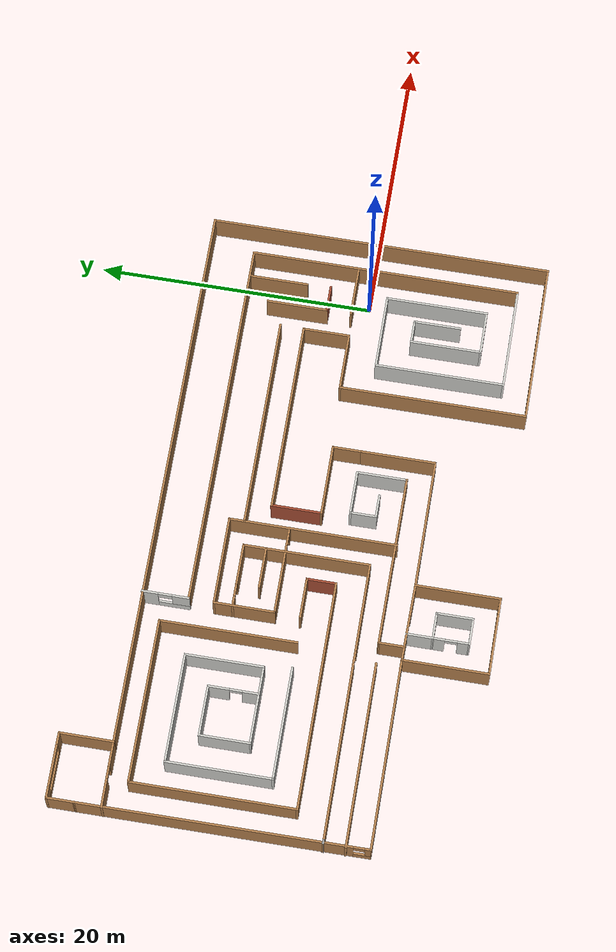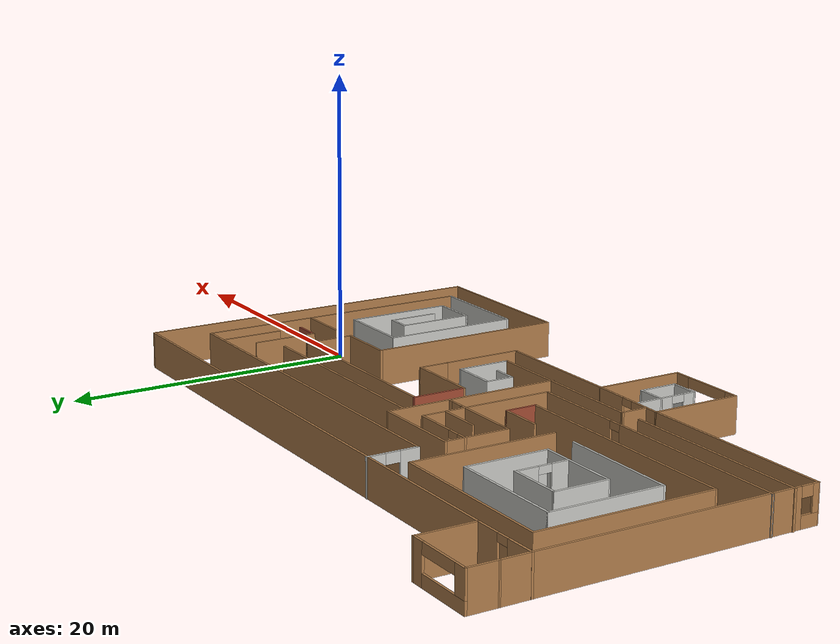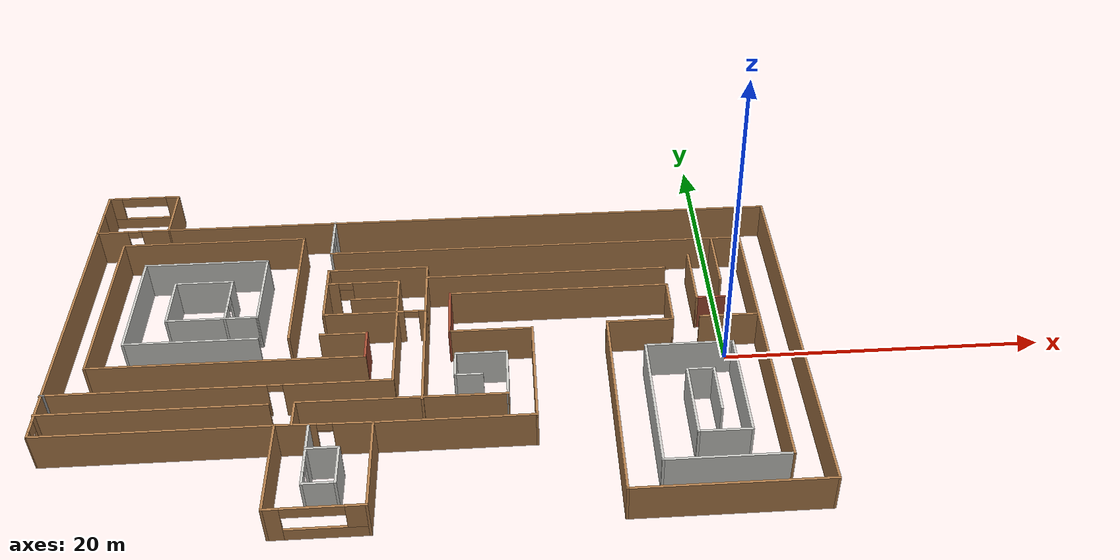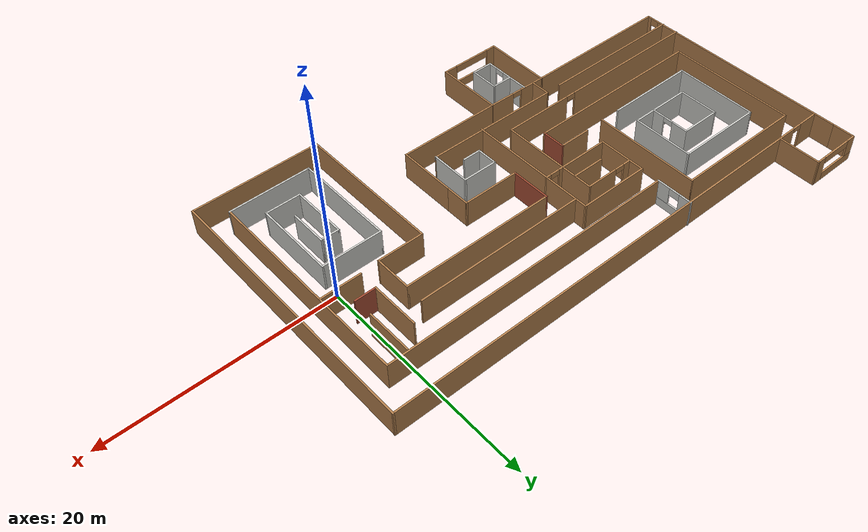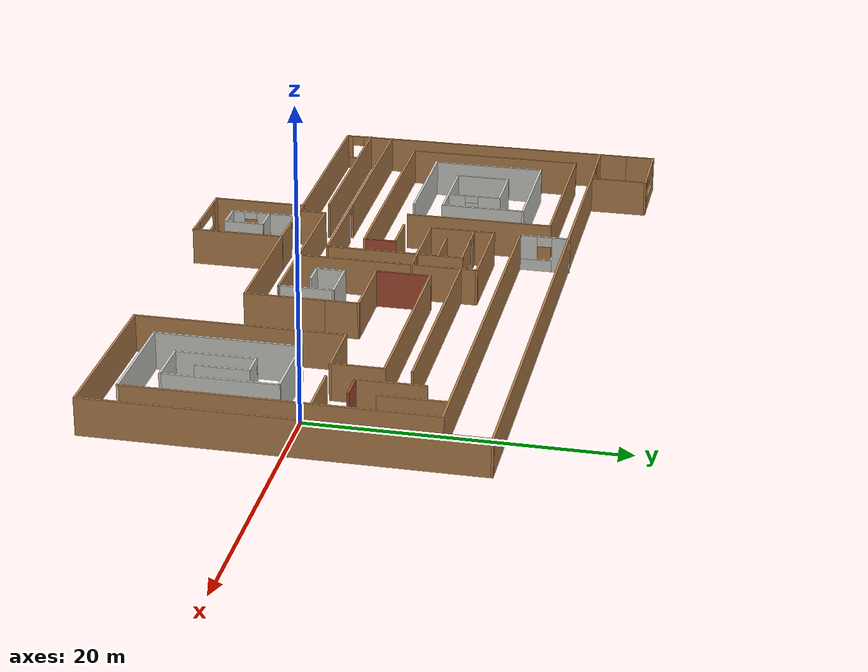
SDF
<sdf version="1.6">
 <model name="Building">
  <pose>-18.2583 1.7119 0 0 -0 0</pose>
  <link name="Wall_0">
   <pose>-22.4887 2.1266 0 0 0 -1.56733</pose>
   <visual name="Wall_0_Visual_0">
    <pose>-0.641349 0 1.25 0 -0 0</pose>
    <geometry><box><size>19.6144 0.15 2.5</size></box></geometry>
    <material>
     <script><uri>file://media/materials/scripts/gazebo.material</uri><name>Gazebo/Wood</name></script>
     <ambient>1 1 1 1</ambient>
    </material>
    <meta><layer>0</layer></meta>
   </visual>
   <collision name="Wall_0_Collision_0">
    <geometry><box><size>19.6144 0.15 2.5</size></box></geometry>
    <pose>-0.641349 0 1.25 0 -0 0</pose>
   </collision>
   <visual name="Wall_0_Visual_1">
    <pose>9.80721 0 0.4 0 -0 0</pose>
    <geometry><box><size>1.2827 0.15 0.8</size></box></geometry>
    <material>
     <script><uri>file://media/materials/scripts/gazebo.material</uri><name>Gazebo/Wood</name></script>
     <ambient>1 1 1 1</ambient>
    </material>
    <meta><layer>0</layer></meta>
   </visual>
   <collision name="Wall_0_Collision_1">
    <geometry><box><size>1.2827 0.15 0.8</size></box></geometry>
    <pose>9.80721 0 0.4 0 -0 0</pose>
   </collision>
   <visual name="Wall_0_Visual_2">
    <pose>10.2072 0 1.65 0 -0 0</pose>
    <geometry><box><size>0.482698 0.15 1.7</size></box></geometry>
    <material>
     <script><uri>file://media/materials/scripts/gazebo.material</uri><name>Gazebo/Wood</name></script>
     <ambient>1 1 1 1</ambient>
    </material>
    <meta><layer>0</layer></meta>
   </visual>
   <collision name="Wall_0_Collision_2">
    <geometry><box><size>0.482698 0.15 1.7</size></box></geometry>
    <pose>10.2072 0 1.65 0 -0 0</pose>
   </collision>
   <visual name="Wall_0_Visual_3">
    <pose>9.56587 0 2.15 0 -0 0</pose>
    <geometry><box><size>0.8 0.15 0.7</size></box></geometry>
    <material>
     <script><uri>file://media/materials/scripts/gazebo.material</uri><name>Gazebo/Wood</name></script>
     <ambient>1 1 1 1</ambient>
    </material>
    <meta><layer>0</layer></meta>
   </visual>
   <collision name="Wall_0_Collision_3">
    <geometry><box><size>0.8 0.15 0.7</size></box></geometry>
    <pose>9.56587 0 2.15 0 -0 0</pose>
   </collision>
  </link>
  <link name="Wall_1">
   <collision name="Wall_1_Collision">
    <geometry><box><size>13.928 0.15 2.5</size></box></geometry>
    <pose>0 0 1.25 0 -0 0</pose>
   </collision>
   <visual name="Wall_1_Visual">
    <pose>0 0 1.25 0 -0 0</pose>
    <geometry><box><size>13.928 0.15 2.5</size></box></geometry>
    <material>
     <script><uri>file://media/materials/scripts/gazebo.material</uri><name>Gazebo/Wood</name></script>
     <ambient>1 1 1 1</ambient>
    </material>
    <meta><layer>0</layer></meta>
   </visual>
   <pose>-15.5637 -8.2469 0 0 -0 0</pose>
  </link>
  <link name="Wall_10">
   <collision name="Wall_10_Collision">
    <geometry><box><size>14 0.15 2.5</size></box></geometry>
    <pose>0 0 1.25 0 -0 0</pose>
   </collision>
   <visual name="Wall_10_Visual">
    <pose>0 0 1.25 0 -0 0</pose>
    <geometry><box><size>14 0.15 2.5</size></box></geometry>
    <material>
     <script><uri>file://media/materials/scripts/gazebo.material</uri><name>Gazebo/Wood</name></script>
     <ambient>1 1 1 1</ambient>
    </material>
    <meta><layer>0</layer></meta>
   </visual>
   <pose>8.10018 2.69968 0 0 -0 0</pose>
  </link>
  <link name="Wall_11">
   <collision name="Wall_11_Collision">
    <geometry><box><size>3.5 0.15 2.5</size></box></geometry>
    <pose>0 0 1.25 0 -0 0</pose>
   </collision>
   <visual name="Wall_11_Visual">
    <pose>0 0 1.25 0 -0 0</pose>
    <geometry><box><size>3.5 0.15 2.5</size></box></geometry>
    <material>
     <script><uri>file://media/materials/scripts/gazebo.material</uri><name>Gazebo/Wood</name></script>
     <ambient>1 1 1 1</ambient>
    </material>
    <meta><layer>0</layer></meta>
   </visual>
   <pose>15.0252 1.02468 0 0 0 -1.5708</pose>
  </link>
  <link name="Wall_12">
   <collision name="Wall_12_Collision">
    <geometry><box><size>4.25 0.15 2.5</size></box></geometry>
    <pose>0 0 1.25 0 -0 0</pose>
   </collision>
   <visual name="Wall_12_Visual">
    <pose>0 0 1.25 0 -0 0</pose>
    <geometry><box><size>4.25 0.15 2.5</size></box></geometry>
    <material>
     <script><uri>file://media/materials/scripts/gazebo.material</uri><name>Gazebo/Wood</name></script>
     <ambient>1 1 1 1</ambient>
    </material>
    <meta><layer>0</layer></meta>
   </visual>
   <pose>12.9752 -0.650318 0 0 -0 3.14159</pose>
  </link>
  <link name="Wall_13">
   <collision name="Wall_13_Collision">
    <geometry><box><size>13.75 0.15 2.5</size></box></geometry>
    <pose>0 0 1.25 0 -0 0</pose>
   </collision>
   <visual name="Wall_13_Visual">
    <pose>0 0 1.25 0 -0 0</pose>
    <geometry><box><size>13.75 0.15 2.5</size></box></geometry>
    <material>
     <script><uri>file://media/materials/scripts/gazebo.material</uri><name>Gazebo/Wood</name></script>
     <ambient>1 1 1 1</ambient>
    </material>
    <meta><layer>0</layer></meta>
   </visual>
   <pose>10.9252 -7.45032 0 0 0 -1.5708</pose>
  </link>
  <link name="Wall_14">
   <collision name="Wall_14_Collision">
    <geometry><box><size>11.75 0.15 2.5</size></box></geometry>
    <pose>0 0 1.25 0 -0 0</pose>
   </collision>
   <visual name="Wall_14_Visual">
    <pose>0 0 1.25 0 -0 0</pose>
    <geometry><box><size>11.75 0.15 2.5</size></box></geometry>
    <material>
     <script><uri>file://media/materials/scripts/gazebo.material</uri><name>Gazebo/Wood</name></script>
     <ambient>1 1 1 1</ambient>
    </material>
    <meta><layer>0</layer></meta>
   </visual>
   <pose>16.7252 -14.2503 0 0 -0 0</pose>
  </link>
  <link name="Wall_15">
   <collision name="Wall_15_Collision">
    <geometry><box><size>25 0.15 2.5</size></box></geometry>
    <pose>0 0 1.25 0 -0 0</pose>
   </collision>
   <visual name="Wall_15_Visual">
    <pose>0 0 1.25 0 -0 0</pose>
    <geometry><box><size>25 0.15 2.5</size></box></geometry>
    <material>
     <script><uri>file://media/materials/scripts/gazebo.material</uri><name>Gazebo/Wood</name></script>
     <ambient>1 1 1 1</ambient>
    </material>
    <meta><layer>0</layer></meta>
   </visual>
   <pose>22.5252 -1.82532 0 0 -0 1.5708</pose>
  </link>
  <link name="Wall_16">
   <collision name="Wall_16_Collision">
    <geometry><box><size>40.5 0.15 2.5</size></box></geometry>
    <pose>0 0 1.25 0 -0 0</pose>
   </collision>
   <visual name="Wall_16_Visual">
    <pose>0 0 1.25 0 -0 0</pose>
    <geometry><box><size>40.5 0.15 2.5</size></box></geometry>
    <material>
     <script><uri>file://media/materials/scripts/gazebo.material</uri><name>Gazebo/Wood</name></script>
     <ambient>1 1 1 1</ambient>
    </material>
    <meta><layer>0</layer></meta>
   </visual>
   <pose>2.35024 10.5999 0 0 -0 3.14158</pose>
  </link>
  <link name="Wall_17">
   <collision name="Wall_17_Collision">
    <geometry><box><size>4 0.15 2.5</size></box></geometry>
    <pose>0 0 1.25 0 -0 0</pose>
   </collision>
   <visual name="Wall_17_Visual">
    <pose>0 0 1.25 0 -0 0</pose>
    <geometry><box><size>4 0.15 2.5</size></box></geometry>
    <material>
     <script><uri>file://media/materials/scripts/gazebo.material</uri><name>Gazebo/Wood</name></script>
     <ambient>1 1 1 1</ambient>
    </material>
    <meta><layer>0</layer></meta>
   </visual>
   <pose>-17.8248 12.5249 0 0 -0 1.57083</pose>
  </link>
  <link name="Wall_18">
   <pose>-20.1748 14.4499 0 0 -0 3.1415</pose>
   <visual name="Wall_18_Visual_0">
    <pose>-1.954 0 1.25 0 -0 0</pose>
    <geometry><box><size>0.941881 0.15 2.5</size></box></geometry>
    <material>
     <script><uri>file://media/materials/scripts/gazebo.material</uri><name>Gazebo/Wood</name></script>
     <ambient>1 1 1 1</ambient>
    </material>
    <meta><layer>0</layer></meta>
   </visual>
   <collision name="Wall_18_Collision_0">
    <geometry><box><size>0.941881 0.15 2.5</size></box></geometry>
    <pose>-1.954 0 1.25 0 -0 0</pose>
   </collision>
   <visual name="Wall_18_Visual_1">
    <pose>0.470941 0 0.4 0 -0 0</pose>
    <geometry><box><size>3.908 0.15 0.8</size></box></geometry>
    <material>
     <script><uri>file://media/materials/scripts/gazebo.material</uri><name>Gazebo/Wood</name></script>
     <ambient>1 1 1 1</ambient>
    </material>
    <meta><layer>0</layer></meta>
   </visual>
   <collision name="Wall_18_Collision_1">
    <geometry><box><size>3.908 0.15 0.8</size></box></geometry>
    <pose>0.470941 0 0.4 0 -0 0</pose>
   </collision>
   <visual name="Wall_18_Visual_2">
    <pose>1.97094 0 1.65 0 -0 0</pose>
    <geometry><box><size>0.907999 0.15 1.7</size></box></geometry>
    <material>
     <script><uri>file://media/materials/scripts/gazebo.material</uri><name>Gazebo/Wood</name></script>
     <ambient>1 1 1 1</ambient>
    </material>
    <meta><layer>0</layer></meta>
   </visual>
   <collision name="Wall_18_Collision_2">
    <geometry><box><size>0.907999 0.15 1.7</size></box></geometry>
    <pose>1.97094 0 1.65 0 -0 0</pose>
   </collision>
   <visual name="Wall_18_Visual_3">
    <pose>0.016941 0 2.15 0 -0 0</pose>
    <geometry><box><size>3 0.15 0.7</size></box></geometry>
    <material>
     <script><uri>file://media/materials/scripts/gazebo.material</uri><name>Gazebo/Wood</name></script>
     <ambient>1 1 1 1</ambient>
    </material>
    <meta><layer>0</layer></meta>
   </visual>
   <collision name="Wall_18_Collision_3">
    <geometry><box><size>3 0.15 0.7</size></box></geometry>
    <pose>0.016941 0 2.15 0 -0 0</pose>
   </collision>
  </link>
  <link name="Wall_19">
   <collision name="Wall_19_Collision">
    <geometry><box><size>2.1 0.15 2.5</size></box></geometry>
    <pose>0 0 1.25 0 -0 0</pose>
   </collision>
   <visual name="Wall_19_Visual">
    <pose>0 0 1.25 0 -0 0</pose>
    <geometry><box><size>2.1 0.15 2.5</size></box></geometry>
    <material>
     <script><uri>file://media/materials/scripts/gazebo.material</uri><name>Gazebo/Wood</name></script>
     <ambient>0.921569 0.807843 0.615686 1</ambient>
    </material>
    <meta><layer>0</layer></meta>
   </visual>
   <pose>-22.5247 13.4751 0 0 0 -1.5708</pose>
  </link>
  <link name="Wall_2">
   <collision name="Wall_2_Collision">
    <geometry><box><size>6.35342 0.15 2.5</size></box></geometry>
    <pose>0 0 1.25 0 -0 0</pose>
   </collision>
   <visual name="Wall_2_Visual">
    <pose>0 0 1.25 0 -0 0</pose>
    <geometry><box><size>6.35342 0.15 2.5</size></box></geometry>
    <material>
     <script><uri>file://media/materials/scripts/gazebo.material</uri><name>Gazebo/Wood</name></script>
     <ambient>1 1 1 1</ambient>
    </material>
    <meta><layer>0</layer></meta>
   </visual>
   <pose>-8.6747 -11.3484 0 0 0 -1.5708</pose>
  </link>
  <link name="Wall_22">
   <pose>-5.87476 -8.29861 0 0 -0 3.12313</pose>
   <visual name="Wall_22_Visual_0">
    <pose>-1.68319 0 1.25 0 -0 0</pose>
    <geometry><box><size>2.38444 0.15 2.5</size></box></geometry>
    <material>
     <script><uri>file://media/materials/scripts/gazebo.material</uri><name>Gazebo/Wood</name></script>
     <ambient>1 1 1 1</ambient>
    </material>
    <meta><layer>0</layer></meta>
   </visual>
   <collision name="Wall_22_Collision_0">
    <geometry><box><size>2.38444 0.15 2.5</size></box></geometry>
    <pose>-1.68319 0 1.25 0 -0 0</pose>
   </collision>
   <visual name="Wall_22_Visual_1">
    <pose>1.64222 0 1.25 0 -0 0</pose>
    <geometry><box><size>2.46639 0.15 2.5</size></box></geometry>
    <material>
     <script><uri>file://media/materials/scripts/gazebo.material</uri><name>Gazebo/Wood</name></script>
     <ambient>1 1 1 1</ambient>
    </material>
    <meta><layer>0</layer></meta>
   </visual>
   <collision name="Wall_22_Collision_1">
    <geometry><box><size>2.46639 0.15 2.5</size></box></geometry>
    <pose>1.64222 0 1.25 0 -0 0</pose>
   </collision>
   <visual name="Wall_22_Visual_2">
    <pose>-0.040973 0 2.25 0 -0 0</pose>
    <geometry><box><size>0.9 0.15 0.5</size></box></geometry>
    <material>
     <script><uri>file://media/materials/scripts/gazebo.material</uri><name>Gazebo/Wood</name></script>
     <ambient>1 1 1 1</ambient>
    </material>
    <meta><layer>0</layer></meta>
   </visual>
   <collision name="Wall_22_Collision_2">
    <geometry><box><size>0.9 0.15 0.5</size></box></geometry>
    <pose>-0.040973 0 2.25 0 -0 0</pose>
   </collision>
  </link>
  <link name="Wall_24">
   <collision name="Wall_24_Collision">
    <geometry><box><size>2 0.15 2.5</size></box></geometry>
    <pose>0 0 1.25 0 -0 0</pose>
   </collision>
   <visual name="Wall_24_Visual">
    <pose>0 0 1.25 0 -0 0</pose>
    <geometry><box><size>2 0.15 2.5</size></box></geometry>
    <material>
     <script><uri>file://media/materials/scripts/gazebo.material</uri><name>Gazebo/CeilingTiled</name></script>
     <ambient>1 1 1 1</ambient>
    </material>
    <meta><layer>0</layer></meta>
   </visual>
   <pose>-6.7275 -9.22377 0 0 0 -1.57101</pose>
  </link>
  <link name="Wall_25">
   <collision name="Wall_25_Collision">
    <geometry><box><size>2 0.15 2.5</size></box></geometry>
    <pose>0 0 1.25 0 -0 0</pose>
   </collision>
   <visual name="Wall_25_Visual">
    <pose>0 0 1.25 0 -0 0</pose>
    <geometry><box><size>2 0.15 2.5</size></box></geometry>
    <material>
     <script><uri>file://media/materials/scripts/gazebo.material</uri><name>Gazebo/CeilingTiled</name></script>
     <ambient>1 1 1 1</ambient>
    </material>
    <meta><layer>0</layer></meta>
   </visual>
   <pose>-5.8027 -10.1489 0 0 -0 0</pose>
  </link>
  <link name="Wall_27">
   <collision name="Wall_27_Collision">
    <geometry><box><size>2.75 0.15 2.5</size></box></geometry>
    <pose>0 0 1.25 0 -0 0</pose>
   </collision>
   <visual name="Wall_27_Visual">
    <pose>0 0 1.25 0 -0 0</pose>
    <geometry><box><size>2.75 0.15 2.5</size></box></geometry>
    <material>
     <script><uri>file://media/materials/scripts/gazebo.material</uri><name>Gazebo/CeilingTiled</name></script>
     <ambient>1 1 1 1</ambient>
    </material>
    <meta><layer>0</layer></meta>
   </visual>
   <pose>-4.8775 -11.4488 0 0 0 -1.57064</pose>
  </link>
  <link name="Wall_28">
   <collision name="Wall_28_Collision">
    <geometry><box><size>2.0004 0.15 2.5</size></box></geometry>
    <pose>0 0 1.25 0 -0 0</pose>
   </collision>
   <visual name="Wall_28_Visual">
    <pose>0 0 1.25 0 -0 0</pose>
    <geometry><box><size>2.0004 0.15 2.5</size></box></geometry>
    <material>
     <script><uri>file://media/materials/scripts/gazebo.material</uri><name>Gazebo/CeilingTiled</name></script>
     <ambient>1 1 1 1</ambient>
    </material>
    <meta><layer>0</layer></meta>
   </visual>
   <pose>-5.8025 -12.7488 0 0 0 -3.14146</pose>
  </link>
  <link name="Wall_29">
   <pose>-6.7277 -11.4489 0 0 -0 1.5708</pose>
   <visual name="Wall_29_Visual_0">
    <pose>-0.915206 0 1.25 0 -0 0</pose>
    <geometry><box><size>0.919835 0.15 2.5</size></box></geometry>
    <material>
     <script><uri>file://media/materials/scripts/gazebo.material</uri><name>Gazebo/CeilingTiled</name></script>
     <ambient>1 1 1 1</ambient>
    </material>
    <meta><layer>0</layer></meta>
   </visual>
   <collision name="Wall_29_Collision_0">
    <geometry><box><size>0.919835 0.15 2.5</size></box></geometry>
    <pose>-0.915206 0 1.25 0 -0 0</pose>
   </collision>
   <visual name="Wall_29_Visual_1">
    <pose>0.909917 0 1.25 0 -0 0</pose>
    <geometry><box><size>0.930411 0.15 2.5</size></box></geometry>
    <material>
     <script><uri>file://media/materials/scripts/gazebo.material</uri><name>Gazebo/CeilingTiled</name></script>
     <ambient>1 1 1 1</ambient>
    </material>
    <meta><layer>0</layer></meta>
   </visual>
   <collision name="Wall_29_Collision_1">
    <geometry><box><size>0.930411 0.15 2.5</size></box></geometry>
    <pose>0.909917 0 1.25 0 -0 0</pose>
   </collision>
   <visual name="Wall_29_Visual_2">
    <pose>-0.005288 0 2.25 0 -0 0</pose>
    <geometry><box><size>0.9 0.15 0.5</size></box></geometry>
    <material>
     <script><uri>file://media/materials/scripts/gazebo.material</uri><name>Gazebo/CeilingTiled</name></script>
     <ambient>1 1 1 1</ambient>
    </material>
    <meta><layer>0</layer></meta>
   </visual>
   <collision name="Wall_29_Collision_2">
    <geometry><box><size>0.9 0.15 0.5</size></box></geometry>
    <pose>-0.005288 0 2.25 0 -0 0</pose>
   </collision>
  </link>
  <link name="Wall_3">
   <pose>-5.8747 -14.4499 0 0 -0 0</pose>
   <visual name="Wall_3_Visual_0">
    <pose>-2.37464 0 1.25 0 -0 0</pose>
    <geometry><box><size>1.00072 0.15 2.5</size></box></geometry>
    <material>
     <script><uri>file://media/materials/scripts/gazebo.material</uri><name>Gazebo/Wood</name></script>
     <ambient>1 1 1 1</ambient>
    </material>
    <meta><layer>0</layer></meta>
   </visual>
   <collision name="Wall_3_Collision_0">
    <geometry><box><size>1.00072 0.15 2.5</size></box></geometry>
    <pose>-2.37464 0 1.25 0 -0 0</pose>
   </collision>
   <visual name="Wall_3_Visual_1">
    <pose>0.50036 0 0.4 0 -0 0</pose>
    <geometry><box><size>4.74928 0.15 0.8</size></box></geometry>
    <material>
     <script><uri>file://media/materials/scripts/gazebo.material</uri><name>Gazebo/Wood</name></script>
     <ambient>1 1 1 1</ambient>
    </material>
    <meta><layer>0</layer></meta>
   </visual>
   <collision name="Wall_3_Collision_1">
    <geometry><box><size>4.74928 0.15 0.8</size></box></geometry>
    <pose>0.50036 0 0.4 0 -0 0</pose>
   </collision>
   <visual name="Wall_3_Visual_2">
    <pose>2.25036 0 1.65 0 -0 0</pose>
    <geometry><box><size>1.24928 0.15 1.7</size></box></geometry>
    <material>
     <script><uri>file://media/materials/scripts/gazebo.material</uri><name>Gazebo/Wood</name></script>
     <ambient>1 1 1 1</ambient>
    </material>
    <meta><layer>0</layer></meta>
   </visual>
   <collision name="Wall_3_Collision_2">
    <geometry><box><size>1.24928 0.15 1.7</size></box></geometry>
    <pose>2.25036 0 1.65 0 -0 0</pose>
   </collision>
   <visual name="Wall_3_Visual_3">
    <pose>-0.124281 0 2.15 0 -0 0</pose>
    <geometry><box><size>3.5 0.15 0.7</size></box></geometry>
    <material>
     <script><uri>file://media/materials/scripts/gazebo.material</uri><name>Gazebo/Wood</name></script>
     <ambient>1 1 1 1</ambient>
    </material>
    <meta><layer>0</layer></meta>
   </visual>
   <collision name="Wall_3_Collision_3">
    <geometry><box><size>3.5 0.15 0.7</size></box></geometry>
    <pose>-0.124281 0 2.15 0 -0 0</pose>
   </collision>
  </link>
  <link name="Wall_31">
   <collision name="Wall_31_Collision">
    <geometry><box><size>1.94917 0.15 2.5</size></box></geometry>
    <pose>0 0 1.25 0 -0 0</pose>
   </collision>
   <visual name="Wall_31_Visual">
    <pose>0 0 1.25 0 -0 0</pose>
    <geometry><box><size>1.94917 0.15 2.5</size></box></geometry>
    <material>
     <script><uri>file://media/materials/scripts/gazebo.material</uri><name>Gazebo/Wood</name></script>
     <ambient>1 1 1 1</ambient>
    </material>
    <meta><layer>0</layer></meta>
   </visual>
   <pose>-7.6987 -7.3474 0 0 -0 1.5708</pose>
  </link>
  <link name="Wall_32">
   <collision name="Wall_32_Collision">
    <geometry><box><size>12.5011 0.15 2.5</size></box></geometry>
    <pose>0 0 1.25 0 -0 0</pose>
   </collision>
   <visual name="Wall_32_Visual">
    <pose>0 0 1.25 0 -0 0</pose>
    <geometry><box><size>12.5011 0.15 2.5</size></box></geometry>
    <material>
     <script><uri>file://media/materials/scripts/gazebo.material</uri><name>Gazebo/Wood</name></script>
     <ambient>1 1 1 1</ambient>
    </material>
    <meta><layer>0</layer></meta>
   </visual>
   <pose>-1.52347 -6.48873 0 0 0 -0.006612</pose>
  </link>
  <link name="Wall_33">
   <collision name="Wall_33_Collision">
    <geometry><box><size>3.75 0.15 2.5</size></box></geometry>
    <pose>0 0 1.25 0 -0 0</pose>
   </collision>
   <visual name="Wall_33_Visual">
    <pose>0 0 1.25 0 -0 0</pose>
    <geometry><box><size>3.75 0.15 2.5</size></box></geometry>
    <material>
     <script><uri>file://media/materials/scripts/gazebo.material</uri><name>Gazebo/CeilingTiled</name></script>
     <ambient>1 1 1 1</ambient>
    </material>
    <meta><layer>0</layer></meta>
   </visual>
   <pose>4.65177 -4.72956 0 0 -0 1.5708</pose>
  </link>
  <link name="Wall_34">
   <collision name="Wall_34_Collision">
    <geometry><box><size>3.25 0.15 2.5</size></box></geometry>
    <pose>0 0 1.25 0 -0 0</pose>
   </collision>
   <visual name="Wall_34_Visual">
    <pose>0 0 1.25 0 -0 0</pose>
    <geometry><box><size>3.25 0.15 2.5</size></box></geometry>
    <material>
     <script><uri>file://media/materials/scripts/gazebo.material</uri><name>Gazebo/CeilingTiled</name></script>
     <ambient>1 1 1 1</ambient>
    </material>
    <meta><layer>0</layer></meta>
   </visual>
   <pose>3.10177 -2.92956 0 0 -0 3.14159</pose>
  </link>
  <link name="Wall_35">
   <collision name="Wall_35_Collision">
    <geometry><box><size>2 0.15 2.5</size></box></geometry>
    <pose>0 0 1.25 0 -0 0</pose>
   </collision>
   <visual name="Wall_35_Visual">
    <pose>0 0 1.25 0 -0 0</pose>
    <geometry><box><size>2 0.15 2.5</size></box></geometry>
    <material>
     <script><uri>file://media/materials/scripts/gazebo.material</uri><name>Gazebo/CeilingTiled</name></script>
     <ambient>1 1 1 1</ambient>
    </material>
    <meta><layer>0</layer></meta>
   </visual>
   <pose>1.55177 -3.85456 0 0 0 -1.5708</pose>
  </link>
  <link name="Wall_36">
   <collision name="Wall_36_Collision">
    <geometry><box><size>1.75 0.15 2.5</size></box></geometry>
    <pose>0 0 1.25 0 -0 0</pose>
   </collision>
   <visual name="Wall_36_Visual">
    <pose>0 0 1.25 0 -0 0</pose>
    <geometry><box><size>1.75 0.15 2.5</size></box></geometry>
    <material>
     <script><uri>file://media/materials/scripts/gazebo.material</uri><name>Gazebo/CeilingTiled</name></script>
     <ambient>1 1 1 1</ambient>
    </material>
    <meta><layer>0</layer></meta>
   </visual>
   <pose>2.35177 -4.77956 0 0 -0 0</pose>
  </link>
  <link name="Wall_38">
   <collision name="Wall_38_Collision">
    <geometry><box><size>12.25 0.15 2.5</size></box></geometry>
    <pose>0 0 1.25 0 -0 0</pose>
   </collision>
   <visual name="Wall_38_Visual">
    <pose>0 0 1.25 0 -0 0</pose>
    <geometry><box><size>12.25 0.15 2.5</size></box></geometry>
    <material>
     <script><uri>file://media/materials/scripts/gazebo.material</uri><name>Gazebo/Wood</name></script>
     <ambient>1 1 1 1</ambient>
    </material>
    <meta><layer>0</layer></meta>
   </visual>
   <pose>-0.3357 -0.549898 0 0 -0 1.5708</pose>
  </link>
  <link name="Wall_39">
   <collision name="Wall_39_Collision">
    <geometry><box><size>6.5 0.15 2.5</size></box></geometry>
    <pose>0 0 1.25 0 -0 0</pose>
   </collision>
   <visual name="Wall_39_Visual">
    <pose>0 0 1.25 0 -0 0</pose>
    <geometry><box><size>6.5 0.15 2.5</size></box></geometry>
    <material>
     <script><uri>file://media/materials/scripts/gazebo.material</uri><name>Gazebo/Wood</name></script>
     <ambient>1 1 1 1</ambient>
    </material>
    <meta><layer>0</layer></meta>
   </visual>
   <pose>-3.51051 5.50029 0 0 -0 3.14153</pose>
  </link>
  <link name="Wall_4">
   <collision name="Wall_4_Collision">
    <geometry><box><size>6.25 0.15 2.5</size></box></geometry>
    <pose>0 0 1.25 0 -0 0</pose>
   </collision>
   <visual name="Wall_4_Visual">
    <pose>0 0 1.25 0 -0 0</pose>
    <geometry><box><size>6.25 0.15 2.5</size></box></geometry>
    <material>
     <script><uri>file://media/materials/scripts/gazebo.material</uri><name>Gazebo/Wood</name></script>
     <ambient>1 1 1 1</ambient>
    </material>
    <meta><layer>0</layer></meta>
   </visual>
   <pose>-3.07476 -11.4001 0 0 -0 1.57082</pose>
  </link>
  <link name="Wall_40">
   <collision name="Wall_40_Collision">
    <geometry><box><size>4.5 0.15 2.5</size></box></geometry>
    <pose>0 0 1.25 0 -0 0</pose>
   </collision>
   <visual name="Wall_40_Visual">
    <pose>0 0 1.25 0 -0 0</pose>
    <geometry><box><size>4.5 0.15 2.5</size></box></geometry>
    <material>
     <script><uri>file://media/materials/scripts/gazebo.material</uri><name>Gazebo/Wood</name></script>
     <ambient>1 1 1 1</ambient>
    </material>
    <meta><layer>0</layer></meta>
   </visual>
   <pose>-6.68532 3.32548 0 0 0 -1.5708</pose>
  </link>
  <link name="Wall_41">
   <pose>-3.51032 1.15048 0 0 -0 0</pose>
   <visual name="Wall_41_Visual_0">
    <pose>-0.707511 0 1.25 0 -0 0</pose>
    <geometry><box><size>5.08498 0.15 2.5</size></box></geometry>
    <material>
     <script><uri>file://media/materials/scripts/gazebo.material</uri><name>Gazebo/Wood</name></script>
     <ambient>1 1 1 1</ambient>
    </material>
    <meta><layer>0</layer></meta>
   </visual>
   <collision name="Wall_41_Collision_0">
    <geometry><box><size>5.08498 0.15 2.5</size></box></geometry>
    <pose>-0.707511 0 1.25 0 -0 0</pose>
   </collision>
   <visual name="Wall_41_Visual_1">
    <pose>2.99249 0 1.25 0 -0 0</pose>
    <geometry><box><size>0.515021 0.15 2.5</size></box></geometry>
    <material>
     <script><uri>file://media/materials/scripts/gazebo.material</uri><name>Gazebo/Wood</name></script>
     <ambient>1 1 1 1</ambient>
    </material>
    <meta><layer>0</layer></meta>
   </visual>
   <collision name="Wall_41_Collision_1">
    <geometry><box><size>0.515021 0.15 2.5</size></box></geometry>
    <pose>2.99249 0 1.25 0 -0 0</pose>
   </collision>
   <visual name="Wall_41_Visual_2">
    <pose>2.28498 0 2.25 0 -0 0</pose>
    <geometry><box><size>0.9 0.15 0.5</size></box></geometry>
    <material>
     <script><uri>file://media/materials/scripts/gazebo.material</uri><name>Gazebo/Wood</name></script>
     <ambient>1 1 1 1</ambient>
    </material>
    <meta><layer>0</layer></meta>
   </visual>
   <collision name="Wall_41_Collision_2">
    <geometry><box><size>0.9 0.15 0.5</size></box></geometry>
    <pose>2.28498 0 2.25 0 -0 0</pose>
   </collision>
  </link>
  <link name="Wall_43">
   <collision name="Wall_43_Collision">
    <geometry><box><size>9.25 0.15 2.5</size></box></geometry>
    <pose>0 0 1.25 0 -0 0</pose>
   </collision>
   <visual name="Wall_43_Visual">
    <pose>0 0 1.25 0 -0 0</pose>
    <geometry><box><size>9.25 0.15 2.5</size></box></geometry>
    <material>
     <script><uri>file://media/materials/scripts/gazebo.material</uri><name>Gazebo/Wood</name></script>
     <ambient>1 1 1 1</ambient>
    </material>
    <meta><layer>0</layer></meta>
   </visual>
   <pose>-2.1157 -0.387898 0 0 0 -1.5708</pose>
  </link>
  <link name="Wall_44">
   <pose>-12.3202 -4.9379 0 0 -0 3.14159</pose>
   <visual name="Wall_44_Visual_0">
    <pose>-7.02658 0 1.25 0 -0 0</pose>
    <geometry><box><size>6.50584 0.15 2.5</size></box></geometry>
    <material>
     <script><uri>file://media/materials/scripts/gazebo.material</uri><name>Gazebo/Wood</name></script>
     <ambient>1 1 1 1</ambient>
    </material>
    <meta><layer>0</layer></meta>
   </visual>
   <collision name="Wall_44_Collision_0">
    <geometry><box><size>6.50584 0.15 2.5</size></box></geometry>
    <pose>-7.02658 0 1.25 0 -0 0</pose>
   </collision>
   <visual name="Wall_44_Visual_1">
    <pose>3.70292 0 1.25 0 -0 0</pose>
    <geometry><box><size>13.1532 0.15 2.5</size></box></geometry>
    <material>
     <script><uri>file://media/materials/scripts/gazebo.material</uri><name>Gazebo/Wood</name></script>
     <ambient>1 1 1 1</ambient>
    </material>
    <meta><layer>0</layer></meta>
   </visual>
   <collision name="Wall_44_Collision_1">
    <geometry><box><size>13.1532 0.15 2.5</size></box></geometry>
    <pose>3.70292 0 1.25 0 -0 0</pose>
   </collision>
   <visual name="Wall_44_Visual_2">
    <pose>-3.32366 0 2.25 0 -0 0</pose>
    <geometry><box><size>0.9 0.15 0.5</size></box></geometry>
    <material>
     <script><uri>file://media/materials/scripts/gazebo.material</uri><name>Gazebo/Wood</name></script>
     <ambient>1 1 1 1</ambient>
    </material>
    <meta><layer>0</layer></meta>
   </visual>
   <collision name="Wall_44_Collision_2">
    <geometry><box><size>0.9 0.15 0.5</size></box></geometry>
    <pose>-3.32366 0 2.25 0 -0 0</pose>
   </collision>
  </link>
  <link name="Wall_45">
   <collision name="Wall_45_Collision">
    <geometry><box><size>0.359336 0.15 2.5</size></box></geometry>
    <pose>0 0 1.25 0 -0 0</pose>
   </collision>
   <visual name="Wall_45_Visual">
    <pose>0 0 1.25 0 -0 0</pose>
    <geometry><box><size>0.359336 0.15 2.5</size></box></geometry>
    <material>
     <script><uri>file://media/materials/scripts/gazebo.material</uri><name>Gazebo/Grey</name></script>
     <ambient>1 1 1 1</ambient>
    </material>
    <meta><layer>0</layer></meta>
   </visual>
   <pose>-22.42 -4.93812 0 0 0 -0.002083</pose>
  </link>
  <link name="Wall_47">
   <collision name="Wall_47_Collision">
    <geometry><box><size>3 0.15 2.5</size></box></geometry>
    <pose>0 0 1.25 0 -0 0</pose>
   </collision>
   <visual name="Wall_47_Visual">
    <pose>0 0 1.25 0 -0 0</pose>
    <geometry><box><size>3 0.15 2.5</size></box></geometry>
    <material>
     <script><uri>file://media/materials/scripts/gazebo.material</uri><name>Gazebo/Wood</name></script>
     <ambient>1 1 1 1</ambient>
    </material>
    <meta><layer>0</layer></meta>
   </visual>
   <pose>-3.60317 2.54344 0 0 -0 0</pose>
  </link>
  <link name="Wall_5">
   <collision name="Wall_5_Collision">
    <geometry><box><size>9.5 0.15 2.5</size></box></geometry>
    <pose>0 0 1.25 0 -0 0</pose>
   </collision>
   <visual name="Wall_5_Visual">
    <pose>0 0 1.25 0 -0 0</pose>
    <geometry><box><size>9.5 0.15 2.5</size></box></geometry>
    <material>
     <script><uri>file://media/materials/scripts/gazebo.material</uri><name>Gazebo/Wood</name></script>
     <ambient>1 1 1 1</ambient>
    </material>
    <meta><layer>0</layer></meta>
   </visual>
   <pose>1.60018 -8.35032 0 0 -0 0</pose>
  </link>
  <link name="Wall_50">
   <pose>-4.4007 4.1621 0 0 -0 3.14159</pose>
   <visual name="Wall_50_Visual_0">
    <pose>-0.848534 0 1.25 0 -0 0</pose>
    <geometry><box><size>3.02293 0.15 2.5</size></box></geometry>
    <material>
     <script><uri>file://media/materials/scripts/gazebo.material</uri><name>Gazebo/Wood</name></script>
     <ambient>1 1 1 1</ambient>
    </material>
    <meta><layer>0</layer></meta>
   </visual>
   <collision name="Wall_50_Collision_0">
    <geometry><box><size>3.02293 0.15 2.5</size></box></geometry>
    <pose>-0.848534 0 1.25 0 -0 0</pose>
   </collision>
   <visual name="Wall_50_Visual_1">
    <pose>1.96147 0 1.25 0 -0 0</pose>
    <geometry><box><size>0.797068 0.15 2.5</size></box></geometry>
    <material>
     <script><uri>file://media/materials/scripts/gazebo.material</uri><name>Gazebo/Wood</name></script>
     <ambient>1 1 1 1</ambient>
    </material>
    <meta><layer>0</layer></meta>
   </visual>
   <collision name="Wall_50_Collision_1">
    <geometry><box><size>0.797068 0.15 2.5</size></box></geometry>
    <pose>1.96147 0 1.25 0 -0 0</pose>
   </collision>
   <visual name="Wall_50_Visual_2">
    <pose>1.11293 0 2.25 0 -0 0</pose>
    <geometry><box><size>0.9 0.15 0.5</size></box></geometry>
    <material>
     <script><uri>file://media/materials/scripts/gazebo.material</uri><name>Gazebo/Wood</name></script>
     <ambient>1 1 1 1</ambient>
    </material>
    <meta><layer>0</layer></meta>
   </visual>
   <collision name="Wall_50_Collision_2">
    <geometry><box><size>0.9 0.15 0.5</size></box></geometry>
    <pose>1.11293 0 2.25 0 -0 0</pose>
   </collision>
  </link>
  <link name="Wall_52">
   <collision name="Wall_52_Collision">
    <geometry><box><size>13.439 0.15 2.5</size></box></geometry>
    <pose>0 0 1.25 0 -0 0</pose>
   </collision>
   <visual name="Wall_52_Visual">
    <pose>0 0 1.25 0 -0 0</pose>
    <geometry><box><size>13.439 0.15 2.5</size></box></geometry>
    <material>
     <script><uri>file://media/materials/scripts/gazebo.material</uri><name>Gazebo/Wood</name></script>
     <ambient>1 1 1 1</ambient>
    </material>
    <meta><layer>0</layer></meta>
   </visual>
   <pose>-15.8802 -6.5189 0 0 -0 3.14159</pose>
  </link>
  <link name="Wall_54">
   <collision name="Wall_54_Collision">
    <geometry><box><size>3 0.15 2.5</size></box></geometry>
    <pose>0 0 1.25 0 -0 0</pose>
   </collision>
   <visual name="Wall_54_Visual">
    <pose>0 0 1.25 0 -0 0</pose>
    <geometry><box><size>3 0.15 2.5</size></box></geometry>
    <material>
     <script><uri>file://media/materials/scripts/gazebo.material</uri><name>Gazebo/Wood</name></script>
     <ambient>1 1 1 1</ambient>
    </material>
    <meta><layer>0</layer></meta>
   </visual>
   <pose>-5.3023 -0.693004 0 0 -0 0</pose>
  </link>
  <link name="Wall_55">
   <collision name="Wall_55_Collision">
    <geometry><box><size>2.25 0.15 2.5</size></box></geometry>
    <pose>0 0 1.25 0 -0 0</pose>
   </collision>
   <visual name="Wall_55_Visual">
    <pose>0 0 1.25 0 -0 0</pose>
    <geometry><box><size>2.25 0.15 2.5</size></box></geometry>
    <material>
     <script><uri>file://media/materials/scripts/gazebo.material</uri><name>Gazebo/Bricks</name></script>
     <ambient>1 1 1 1</ambient>
    </material>
    <meta><layer>0</layer></meta>
   </visual>
   <pose>-3.8773 -1.743 0 0 0 -1.5708</pose>
  </link>
  <link name="Wall_56">
   <collision name="Wall_56_Collision">
    <geometry><box><size>16.75 0.15 2.5</size></box></geometry>
    <pose>0 0 1.25 0 -0 0</pose>
   </collision>
   <visual name="Wall_56_Visual">
    <pose>0 0 1.25 0 -0 0</pose>
    <geometry><box><size>16.75 0.15 2.5</size></box></geometry>
    <material>
     <script><uri>file://media/materials/scripts/gazebo.material</uri><name>Gazebo/Wood</name></script>
     <ambient>1 1 1 1</ambient>
    </material>
    <meta><layer>0</layer></meta>
   </visual>
   <pose>-12.1773 -2.793 0 0 -0 3.14159</pose>
  </link>
  <link name="Wall_57">
   <collision name="Wall_57_Collision">
    <geometry><box><size>12 0.15 2.5</size></box></geometry>
    <pose>0 0 1.25 0 -0 0</pose>
   </collision>
   <visual name="Wall_57_Visual">
    <pose>0 0 1.25 0 -0 0</pose>
    <geometry><box><size>12 0.15 2.5</size></box></geometry>
    <material>
     <script><uri>file://media/materials/scripts/gazebo.material</uri><name>Gazebo/Wood</name></script>
     <ambient>1 1 1 1</ambient>
    </material>
    <meta><layer>0</layer></meta>
   </visual>
   <pose>-20.4773 3.132 0 0 -0 1.5708</pose>
  </link>
  <link name="Wall_58">
   <collision name="Wall_58_Collision">
    <geometry><box><size>12 0.15 2.5</size></box></geometry>
    <pose>0 0 1.25 0 -0 0</pose>
   </collision>
   <visual name="Wall_58_Visual">
    <pose>0 0 1.25 0 -0 0</pose>
    <geometry><box><size>12 0.15 2.5</size></box></geometry>
    <material>
     <script><uri>file://media/materials/scripts/gazebo.material</uri><name>Gazebo/Wood</name></script>
     <ambient>1 1 1 1</ambient>
    </material>
    <meta><layer>0</layer></meta>
   </visual>
   <pose>-14.5523 9.057 0 0 -0 0</pose>
  </link>
  <link name="Wall_59">
   <collision name="Wall_59_Collision">
    <geometry><box><size>10 0.15 2.5</size></box></geometry>
    <pose>0 0 1.25 0 -0 0</pose>
   </collision>
   <visual name="Wall_59_Visual">
    <pose>0 0 1.25 0 -0 0</pose>
    <geometry><box><size>10 0.15 2.5</size></box></geometry>
    <material>
     <script><uri>file://media/materials/scripts/gazebo.material</uri><name>Gazebo/Wood</name></script>
     <ambient>1 1 1 1</ambient>
    </material>
    <meta><layer>0</layer></meta>
   </visual>
   <pose>-8.6273 4.132 0 0 0 -1.5708</pose>
  </link>
  <link name="Wall_6">
   <collision name="Wall_6_Collision">
    <geometry><box><size>5.5 0.15 2.5</size></box></geometry>
    <pose>0 0 1.25 0 -0 0</pose>
   </collision>
   <visual name="Wall_6_Visual">
    <pose>0 0 1.25 0 -0 0</pose>
    <geometry><box><size>5.5 0.15 2.5</size></box></geometry>
    <material>
     <script><uri>file://media/materials/scripts/gazebo.material</uri><name>Gazebo/Wood</name></script>
     <ambient>1 1 1 1</ambient>
    </material>
    <meta><layer>0</layer></meta>
   </visual>
   <pose>6.27518 -5.67532 0 0 -0 1.5708</pose>
  </link>
  <link name="Wall_61">
   <collision name="Wall_61_Collision">
    <geometry><box><size>8.25 0.15 2.5</size></box></geometry>
    <pose>0 0 1.25 0 -0 0</pose>
   </collision>
   <visual name="Wall_61_Visual">
    <pose>0 0 1.25 0 -0 0</pose>
    <geometry><box><size>8.25 0.15 2.5</size></box></geometry>
    <material>
     <script><uri>file://media/materials/scripts/gazebo.material</uri><name>Gazebo/CeilingTiled</name></script>
     <ambient>1 1 1 1</ambient>
    </material>
    <meta><layer>0</layer></meta>
   </visual>
   <pose>-14.5801 -0.773915 0 0 -0 3.14159</pose>
  </link>
  <link name="Wall_62">
   <collision name="Wall_62_Collision">
    <geometry><box><size>7.75 0.15 2.5</size></box></geometry>
    <pose>0 0 1.25 0 -0 0</pose>
   </collision>
   <visual name="Wall_62_Visual">
    <pose>0 0 1.25 0 -0 0</pose>
    <geometry><box><size>7.75 0.15 2.5</size></box></geometry>
    <material>
     <script><uri>file://media/materials/scripts/gazebo.material</uri><name>Gazebo/CeilingTiled</name></script>
     <ambient>1 1 1 1</ambient>
    </material>
    <meta><layer>0</layer></meta>
   </visual>
   <pose>-18.6301 3.02609 0 0 -0 1.5708</pose>
  </link>
  <link name="Wall_63">
   <collision name="Wall_63_Collision">
    <geometry><box><size>8 0.15 2.5</size></box></geometry>
    <pose>0 0 1.25 0 -0 0</pose>
   </collision>
   <visual name="Wall_63_Visual">
    <pose>0 0 1.25 0 -0 0</pose>
    <geometry><box><size>8 0.15 2.5</size></box></geometry>
    <material>
     <script><uri>file://media/materials/scripts/gazebo.material</uri><name>Gazebo/CeilingTiled</name></script>
     <ambient>1 1 1 1</ambient>
    </material>
    <meta><layer>0</layer></meta>
   </visual>
   <pose>-14.7051 6.82609 0 0 -0 0</pose>
  </link>
  <link name="Wall_64">
   <collision name="Wall_64_Collision">
    <geometry><box><size>5.75 0.15 2.5</size></box></geometry>
    <pose>0 0 1.25 0 -0 0</pose>
   </collision>
   <visual name="Wall_64_Visual">
    <pose>0 0 1.25 0 -0 0</pose>
    <geometry><box><size>5.75 0.15 2.5</size></box></geometry>
    <material>
     <script><uri>file://media/materials/scripts/gazebo.material</uri><name>Gazebo/CeilingTiled</name></script>
     <ambient>1 1 1 1</ambient>
    </material>
    <meta><layer>0</layer></meta>
   </visual>
   <pose>-10.7799 4.02609 0 0 0 -1.57072</pose>
  </link>
  <link name="Wall_65">
   <collision name="Wall_65_Collision">
    <geometry><box><size>5.75 0.15 2.5</size></box></geometry>
    <pose>0 0 1.25 0 -0 0</pose>
   </collision>
   <visual name="Wall_65_Visual">
    <pose>0 0 1.25 0 -0 0</pose>
    <geometry><box><size>5.75 0.15 2.5</size></box></geometry>
    <material>
     <script><uri>file://media/materials/scripts/gazebo.material</uri><name>Gazebo/CeilingTiled</name></script>
     <ambient>1 1 1 1</ambient>
    </material>
    <meta><layer>0</layer></meta>
   </visual>
   <pose>-13.5797 1.2261 0 0 -0 3.14159</pose>
  </link>
  <link name="Wall_66">
   <collision name="Wall_66_Collision">
    <geometry><box><size>3.75 0.15 2.5</size></box></geometry>
    <pose>0 0 1.25 0 -0 0</pose>
   </collision>
   <visual name="Wall_66_Visual">
    <pose>0 0 1.25 0 -0 0</pose>
    <geometry><box><size>3.75 0.15 2.5</size></box></geometry>
    <material>
     <script><uri>file://media/materials/scripts/gazebo.material</uri><name>Gazebo/CeilingTiled</name></script>
     <ambient>0.435294 0.796078 0.67451 1</ambient>
    </material>
    <meta><layer>0</layer></meta>
   </visual>
   <pose>-16.3799 3.02609 0 0 -0 1.57091</pose>
  </link>
  <link name="Wall_67">
   <collision name="Wall_67_Collision">
    <geometry><box><size>3.75 0.15 2.5</size></box></geometry>
    <pose>0 0 1.25 0 -0 0</pose>
   </collision>
   <visual name="Wall_67_Visual">
    <pose>0 0 1.25 0 -0 0</pose>
    <geometry><box><size>3.75 0.15 2.5</size></box></geometry>
    <material>
     <script><uri>file://media/materials/scripts/gazebo.material</uri><name>Gazebo/CeilingTiled</name></script>
     <ambient>1 1 1 1</ambient>
    </material>
    <meta><layer>0</layer></meta>
   </visual>
   <pose>-14.5799 4.82609 0 0 -0 5e-06</pose>
  </link>
  <link name="Wall_68">
   <pose>-12.7797 3.0261 0 0 0 -1.5708</pose>
   <visual name="Wall_68_Visual_0">
    <pose>-1.08299 0 1.25 0 -0 0</pose>
    <geometry><box><size>1.58401 0.15 2.5</size></box></geometry>
    <material>
     <script><uri>file://media/materials/scripts/gazebo.material</uri><name>Gazebo/CeilingTiled</name></script>
     <ambient>1 1 1 1</ambient>
    </material>
    <meta><layer>0</layer></meta>
   </visual>
   <collision name="Wall_68_Collision_0">
    <geometry><box><size>1.58401 0.15 2.5</size></box></geometry>
    <pose>-1.08299 0 1.25 0 -0 0</pose>
   </collision>
   <visual name="Wall_68_Visual_1">
    <pose>1.24201 0 1.25 0 -0 0</pose>
    <geometry><box><size>1.26599 0.15 2.5</size></box></geometry>
    <material>
     <script><uri>file://media/materials/scripts/gazebo.material</uri><name>Gazebo/CeilingTiled</name></script>
     <ambient>1 1 1 1</ambient>
    </material>
    <meta><layer>0</layer></meta>
   </visual>
   <collision name="Wall_68_Collision_1">
    <geometry><box><size>1.26599 0.15 2.5</size></box></geometry>
    <pose>1.24201 0 1.25 0 -0 0</pose>
   </collision>
   <visual name="Wall_68_Visual_2">
    <pose>0.159014 0 2.25 0 -0 0</pose>
    <geometry><box><size>0.9 0.15 0.5</size></box></geometry>
    <material>
     <script><uri>file://media/materials/scripts/gazebo.material</uri><name>Gazebo/CeilingTiled</name></script>
     <ambient>1 1 1 1</ambient>
    </material>
    <meta><layer>0</layer></meta>
   </visual>
   <collision name="Wall_68_Collision_2">
    <geometry><box><size>0.9 0.15 0.5</size></box></geometry>
    <pose>0.159014 0 2.25 0 -0 0</pose>
   </collision>
  </link>
  <link name="Wall_7">
   <collision name="Wall_7_Collision">
    <geometry><box><size>2.25 0.15 2.5</size></box></geometry>
    <pose>0 0 1.25 0 -0 0</pose>
   </collision>
   <visual name="Wall_7_Visual">
    <pose>0 0 1.25 0 -0 0</pose>
    <geometry><box><size>2.25 0.15 2.5</size></box></geometry>
    <material>
     <script><uri>file://media/materials/scripts/gazebo.material</uri><name>Gazebo/Wood</name></script>
     <ambient>1 1 1 1</ambient>
    </material>
    <meta><layer>0</layer></meta>
   </visual>
   <pose>6.27518 -1.95032 0 0 -0 1.5708</pose>
  </link>
  <link name="Wall_70">
   <pose>-20.1747 10.5811 0 0 -0 0.008085</pose>
   <visual name="Wall_70_Visual_0">
    <pose>-1.38485 0 1.25 0 -0 0</pose>
    <geometry><box><size>2.08033 0.15 2.5</size></box></geometry>
    <material>
     <script><uri>file://media/materials/scripts/gazebo.material</uri><name>Gazebo/Wood</name></script>
     <ambient>1 1 1 1</ambient>
    </material>
    <meta><layer>0</layer></meta>
   </visual>
   <collision name="Wall_70_Collision_0">
    <geometry><box><size>2.08033 0.15 2.5</size></box></geometry>
    <pose>-1.38485 0 1.25 0 -0 0</pose>
   </collision>
   <visual name="Wall_70_Visual_1">
    <pose>1.49016 0 1.25 0 -0 0</pose>
    <geometry><box><size>1.8697 0.15 2.5</size></box></geometry>
    <material>
     <script><uri>file://media/materials/scripts/gazebo.material</uri><name>Gazebo/Wood</name></script>
     <ambient>1 1 1 1</ambient>
    </material>
    <meta><layer>0</layer></meta>
   </visual>
   <collision name="Wall_70_Collision_1">
    <geometry><box><size>1.8697 0.15 2.5</size></box></geometry>
    <pose>1.49016 0 1.25 0 -0 0</pose>
   </collision>
   <visual name="Wall_70_Visual_2">
    <pose>0.105312 0 2.25 0 -0 0</pose>
    <geometry><box><size>0.9 0.15 0.5</size></box></geometry>
    <material>
     <script><uri>file://media/materials/scripts/gazebo.material</uri><name>Gazebo/Wood</name></script>
     <ambient>1 1 1 1</ambient>
    </material>
    <meta><layer>0</layer></meta>
   </visual>
   <collision name="Wall_70_Collision_2">
    <geometry><box><size>0.9 0.15 0.5</size></box></geometry>
    <pose>0.105312 0 2.25 0 -0 0</pose>
   </collision>
  </link>
  <link name="Wall_72">
   <pose>-6.67034 8.98047 0 0 0 -1.5708</pose>
   <visual name="Wall_72_Visual_0">
    <pose>-1.13563 0 1.25 0 -0 0</pose>
    <geometry><box><size>1.22874 0.15 2.5</size></box></geometry>
    <material>
     <script><uri>file://media/materials/scripts/gazebo.material</uri><name>Gazebo/CeilingTiled</name></script>
     <ambient>1 1 1 1</ambient>
    </material>
    <meta><layer>0</layer></meta>
   </visual>
   <collision name="Wall_72_Collision_0">
    <geometry><box><size>1.22874 0.15 2.5</size></box></geometry>
    <pose>-1.13563 0 1.25 0 -0 0</pose>
   </collision>
   <visual name="Wall_72_Visual_1">
    <pose>0.614371 0 0.4 0 -0 0</pose>
    <geometry><box><size>2.27126 0.15 0.8</size></box></geometry>
    <material>
     <script><uri>file://media/materials/scripts/gazebo.material</uri><name>Gazebo/CeilingTiled</name></script>
     <ambient>1 1 1 1</ambient>
    </material>
    <meta><layer>0</layer></meta>
   </visual>
   <collision name="Wall_72_Collision_1">
    <geometry><box><size>2.27126 0.15 0.8</size></box></geometry>
    <pose>0.614371 0 0.4 0 -0 0</pose>
   </collision>
   <visual name="Wall_72_Visual_2">
    <pose>1.11437 0 1.65 0 -0 0</pose>
    <geometry><box><size>1.27126 0.15 1.7</size></box></geometry>
    <material>
     <script><uri>file://media/materials/scripts/gazebo.material</uri><name>Gazebo/CeilingTiled</name></script>
     <ambient>1 1 1 1</ambient>
    </material>
    <meta><layer>0</layer></meta>
   </visual>
   <collision name="Wall_72_Collision_2">
    <geometry><box><size>1.27126 0.15 1.7</size></box></geometry>
    <pose>1.11437 0 1.65 0 -0 0</pose>
   </collision>
   <visual name="Wall_72_Visual_3">
    <pose>-0.021258 0 2.15 0 -0 0</pose>
    <geometry><box><size>1 0.15 0.7</size></box></geometry>
    <material>
     <script><uri>file://media/materials/scripts/gazebo.material</uri><name>Gazebo/CeilingTiled</name></script>
     <ambient>1 1 1 1</ambient>
    </material>
    <meta><layer>0</layer></meta>
   </visual>
   <collision name="Wall_72_Collision_3">
    <geometry><box><size>1 0.15 0.7</size></box></geometry>
    <pose>-0.021258 0 2.15 0 -0 0</pose>
   </collision>
  </link>
  <link name="Wall_73">
   <collision name="Wall_73_Collision">
    <geometry><box><size>27.25 0.15 2.5</size></box></geometry>
    <pose>0 0 1.25 0 -0 0</pose>
   </collision>
   <visual name="Wall_73_Visual">
    <pose>0 0 1.25 0 -0 0</pose>
    <geometry><box><size>27.25 0.15 2.5</size></box></geometry>
    <material>
     <script><uri>file://media/materials/scripts/gazebo.material</uri><name>Gazebo/Wood</name></script>
     <ambient>1 1 1 1</ambient>
    </material>
    <meta><layer>0</layer></meta>
   </visual>
   <pose>6.87966 7.30548 0 0 -0 0</pose>
  </link>
  <link name="Wall_74">
   <collision name="Wall_74_Collision">
    <geometry><box><size>19.75 0.15 2.5</size></box></geometry>
    <pose>0 0 1.25 0 -0 0</pose>
   </collision>
   <visual name="Wall_74_Visual">
    <pose>0 0 1.25 0 -0 0</pose>
    <geometry><box><size>19.75 0.15 2.5</size></box></geometry>
    <material>
     <script><uri>file://media/materials/scripts/gazebo.material</uri><name>Gazebo/Wood</name></script>
     <ambient>1 1 1 1</ambient>
    </material>
    <meta><layer>0</layer></meta>
   </visual>
   <pose>20.4297 -2.49453 0 0 0 -1.5708</pose>
  </link>
  <link name="Wall_75">
   <collision name="Wall_75_Collision">
    <geometry><box><size>7.5 0.15 2.5</size></box></geometry>
    <pose>0 0 1.25 0 -0 0</pose>
   </collision>
   <visual name="Wall_75_Visual">
    <pose>0 0 1.25 0 -0 0</pose>
    <geometry><box><size>7.5 0.15 2.5</size></box></geometry>
    <material>
     <script><uri>file://media/materials/scripts/gazebo.material</uri><name>Gazebo/CeilingTiled</name></script>
     <ambient>1 1 1 1</ambient>
    </material>
    <meta><layer>0</layer></meta>
   </visual>
   <pose>16.7547 -12.2945 0 0 -0 3.14159</pose>
  </link>
  <link name="Wall_76">
   <collision name="Wall_76_Collision">
    <geometry><box><size>9.5 0.15 2.5</size></box></geometry>
    <pose>0 0 1.25 0 -0 0</pose>
   </collision>
   <visual name="Wall_76_Visual">
    <pose>0 0 1.25 0 -0 0</pose>
    <geometry><box><size>9.5 0.15 2.5</size></box></geometry>
    <material>
     <script><uri>file://media/materials/scripts/gazebo.material</uri><name>Gazebo/CeilingTiled</name></script>
     <ambient>1 1 1 1</ambient>
    </material>
    <meta><layer>0</layer></meta>
   </visual>
   <pose>13.0797 -7.61953 0 0 -0 1.5708</pose>
  </link>
  <link name="Wall_77">
   <collision name="Wall_77_Collision">
    <geometry><box><size>5.5 0.15 2.5</size></box></geometry>
    <pose>0 0 1.25 0 -0 0</pose>
   </collision>
   <visual name="Wall_77_Visual">
    <pose>0 0 1.25 0 -0 0</pose>
    <geometry><box><size>5.5 0.15 2.5</size></box></geometry>
    <material>
     <script><uri>file://media/materials/scripts/gazebo.material</uri><name>Gazebo/CeilingTiled</name></script>
     <ambient>1 1 1 1</ambient>
    </material>
    <meta><layer>0</layer></meta>
   </visual>
   <pose>15.7547 -2.94453 0 0 -0 0</pose>
  </link>
  <link name="Wall_78">
   <collision name="Wall_78_Collision">
    <geometry><box><size>7.5 0.15 2.5</size></box></geometry>
    <pose>0 0 1.25 0 -0 0</pose>
   </collision>
   <visual name="Wall_78_Visual">
    <pose>0 0 1.25 0 -0 0</pose>
    <geometry><box><size>7.5 0.15 2.5</size></box></geometry>
    <material>
     <script><uri>file://media/materials/scripts/gazebo.material</uri><name>Gazebo/CeilingTiled</name></script>
     <ambient>1 1 1 1</ambient>
    </material>
    <meta><layer>0</layer></meta>
   </visual>
   <pose>18.4297 -6.61953 0 0 0 -1.5708</pose>
  </link>
  <link name="Wall_79">
   <collision name="Wall_79_Collision">
    <geometry><box><size>3.25 0.15 2.5</size></box></geometry>
    <pose>0 0 1.25 0 -0 0</pose>
   </collision>
   <visual name="Wall_79_Visual">
    <pose>0 0 1.25 0 -0 0</pose>
    <geometry><box><size>3.25 0.15 2.5</size></box></geometry>
    <material>
     <script><uri>file://media/materials/scripts/gazebo.material</uri><name>Gazebo/CeilingTiled</name></script>
     <ambient>1 1 1 1</ambient>
    </material>
    <meta><layer>0</layer></meta>
   </visual>
   <pose>16.8797 -10.2945 0 0 -0 3.14159</pose>
  </link>
  <link name="Wall_8">
   <collision name="Wall_8_Collision">
    <geometry><box><size>5.25 0.15 2.5</size></box></geometry>
    <pose>0 0 1.25 0 -0 0</pose>
   </collision>
   <visual name="Wall_8_Visual">
    <pose>0 0 1.25 0 -0 0</pose>
    <geometry><box><size>5.25 0.15 2.5</size></box></geometry>
    <material>
     <script><uri>file://media/materials/scripts/gazebo.material</uri><name>Gazebo/Wood</name></script>
     <ambient>1 1 1 1</ambient>
    </material>
    <meta><layer>0</layer></meta>
   </visual>
   <pose>3.72518 -0.900318 0 0 -0 3.14159</pose>
  </link>
  <link name="Wall_80">
   <collision name="Wall_80_Collision">
    <geometry><box><size>5.25 0.15 2.5</size></box></geometry>
    <pose>0 0 1.25 0 -0 0</pose>
   </collision>
   <visual name="Wall_80_Visual">
    <pose>0 0 1.25 0 -0 0</pose>
    <geometry><box><size>5.25 0.15 2.5</size></box></geometry>
    <material>
     <script><uri>file://media/materials/scripts/gazebo.material</uri><name>Gazebo/CeilingTiled</name></script>
     <ambient>1 1 1 1</ambient>
    </material>
    <meta><layer>0</layer></meta>
   </visual>
   <pose>15.3297 -7.74453 0 0 -0 1.5708</pose>
  </link>
  <link name="Wall_81">
   <collision name="Wall_81_Collision">
    <geometry><box><size>1.75 0.15 2.5</size></box></geometry>
    <pose>0 0 1.25 0 -0 0</pose>
   </collision>
   <visual name="Wall_81_Visual">
    <pose>0 0 1.25 0 -0 0</pose>
    <geometry><box><size>1.75 0.15 2.5</size></box></geometry>
    <material>
     <script><uri>file://media/materials/scripts/gazebo.material</uri><name>Gazebo/CeilingTiled</name></script>
     <ambient>1 1 1 1</ambient>
    </material>
    <meta><layer>0</layer></meta>
   </visual>
   <pose>16.1297 -5.19453 0 0 -0 0</pose>
  </link>
  <link name="Wall_82">
   <collision name="Wall_82_Collision">
    <geometry><box><size>3.5 0.15 2.5</size></box></geometry>
    <pose>0 0 1.25 0 -0 0</pose>
   </collision>
   <visual name="Wall_82_Visual">
    <pose>0 0 1.25 0 -0 0</pose>
    <geometry><box><size>3.5 0.15 2.5</size></box></geometry>
    <material>
     <script><uri>file://media/materials/scripts/gazebo.material</uri><name>Gazebo/CeilingTiled</name></script>
     <ambient>1 1 1 1</ambient>
    </material>
    <meta><layer>0</layer></meta>
   </visual>
   <pose>16.9297 -6.86953 0 0 0 -1.5708</pose>
  </link>
  <link name="Wall_84">
   <collision name="Wall_84_Collision">
    <geometry><box><size>3.75 0.15 2.5</size></box></geometry>
    <pose>0 0 1.25 0 -0 0</pose>
   </collision>
   <visual name="Wall_84_Visual">
    <pose>0 0 1.25 0 -0 0</pose>
    <geometry><box><size>3.75 0.15 2.5</size></box></geometry>
    <material>
     <script><uri>file://media/materials/scripts/gazebo.material</uri><name>Gazebo/Wood</name></script>
     <ambient>1 1 1 1</ambient>
    </material>
    <meta><layer>0</layer></meta>
   </visual>
   <pose>18.5777 -0.510265 0 0 -0 0</pose>
  </link>
  <link name="Wall_86">
   <collision name="Wall_86_Collision">
    <geometry><box><size>4.5 0.15 2.5</size></box></geometry>
    <pose>0 0 1.25 0 -0 0</pose>
   </collision>
   <visual name="Wall_86_Visual">
    <pose>0 0 1.25 0 -0 0</pose>
    <geometry><box><size>4.5 0.15 2.5</size></box></geometry>
    <material>
     <script><uri>file://media/materials/scripts/gazebo.material</uri><name>Gazebo/Wood</name></script>
     <ambient>1 1 1 1</ambient>
    </material>
    <meta><layer>0</layer></meta>
   </visual>
   <pose>16.7777 3.45589 0 0 0 -1.5708</pose>
  </link>
  <link name="Wall_87">
   <collision name="Wall_87_Collision">
    <geometry><box><size>2 0.15 2.5</size></box></geometry>
    <pose>0 0 1.25 0 -0 0</pose>
   </collision>
   <visual name="Wall_87_Visual">
    <pose>0 0 1.25 0 -0 0</pose>
    <geometry><box><size>2 0.15 2.5</size></box></geometry>
    <material>
     <script><uri>file://media/materials/scripts/gazebo.material</uri><name>Gazebo/Bricks</name></script>
     <ambient>1 1 1 1</ambient>
    </material>
    <meta><layer>0</layer></meta>
   </visual>
   <pose>17.7027 1.28089 0 0 -0 0</pose>
  </link>
  <link name="Wall_89">
   <collision name="Wall_89_Collision">
    <geometry><box><size>4.25 0.15 2.5</size></box></geometry>
    <pose>0 0 1.25 0 -0 0</pose>
   </collision>
   <visual name="Wall_89_Visual">
    <pose>0 0 1.25 0 -0 0</pose>
    <geometry><box><size>4.25 0.15 2.5</size></box></geometry>
    <material>
     <script><uri>file://media/materials/scripts/gazebo.material</uri><name>Gazebo/Wood</name></script>
     <ambient>1 1 1 1</ambient>
    </material>
    <meta><layer>0</layer></meta>
   </visual>
   <pose>18.5456 5.07555 0 0 -0 1.5708</pose>
  </link>
  <link name="Wall_9">
   <collision name="Wall_9_Collision">
    <geometry><box><size>3.75 0.15 2.5</size></box></geometry>
    <pose>0 0 1.25 0 -0 0</pose>
   </collision>
   <visual name="Wall_9_Visual">
    <pose>0 0 1.25 0 -0 0</pose>
    <geometry><box><size>3.75 0.15 2.5</size></box></geometry>
    <material>
     <script><uri>file://media/materials/scripts/gazebo.material</uri><name>Gazebo/Bricks</name></script>
     <ambient>1 1 1 1</ambient>
    </material>
    <meta><layer>0</layer></meta>
   </visual>
   <pose>1.17518 0.899682 0 0 -0 1.5708</pose>
  </link>
  <link name="Wall_91">
   <collision name="Wall_91_Collision">
    <geometry><box><size>15.544 0.15 2.5</size></box></geometry>
    <pose>0 0 1.25 0 -0 0</pose>
   </collision>
   <visual name="Wall_91_Visual">
    <pose>0 0 1.25 0 -0 0</pose>
    <geometry><box><size>15.544 0.15 2.5</size></box></geometry>
    <material>
     <script><uri>file://media/materials/scripts/gazebo.material</uri><name>Gazebo/Wood</name></script>
     <ambient>1 1 1 1</ambient>
    </material>
    <meta><layer>0</layer></meta>
   </visual>
   <pose>7.3613 4.4211 0 0 -0 3.14159</pose>
  </link>
  <static>1</static>
 </model>
</sdf>
